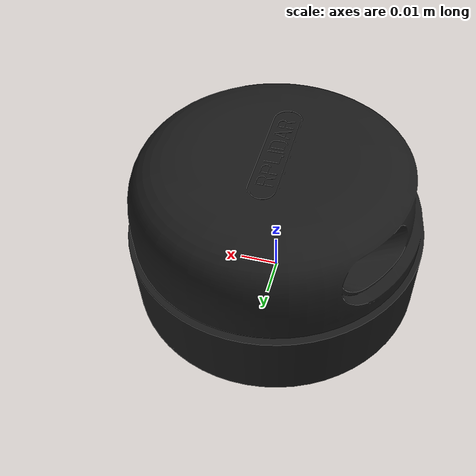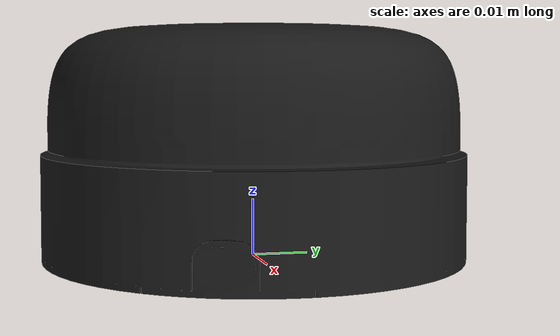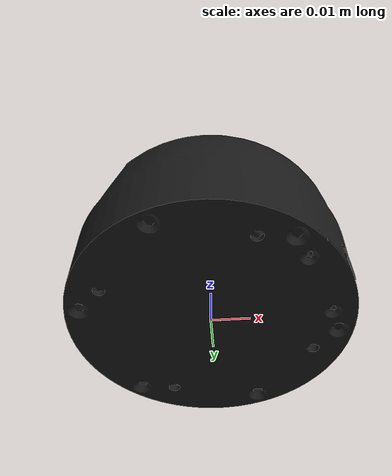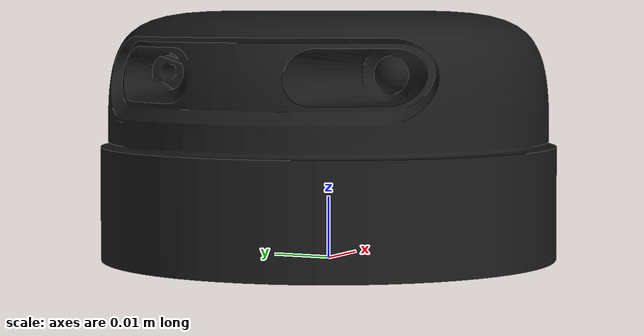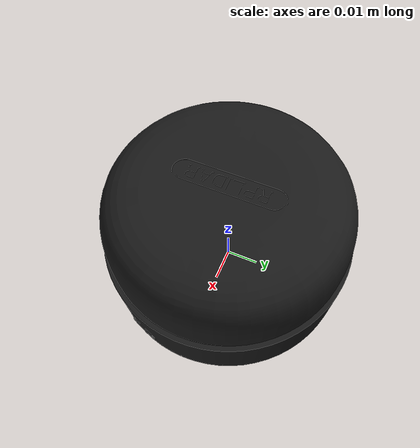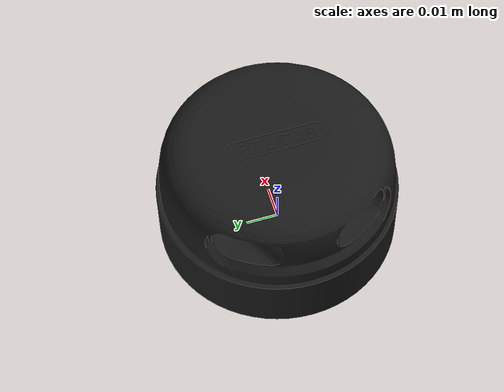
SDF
<?xml version="1.0" ?>
<sdf version="1.6">
  <model name="rplidar_a2">
    <link name="link">
      <pose>0 0 0 0 0 0</pose>
      <inertial>
        <pose>0 0 0 0 0 0</pose>
        <mass>0.2</mass>
        <inertia>
          <ixx>0.00034437749999999994</ixx>
          <ixy>0</ixy>
          <ixz>0</ixz>
          <iyy>0.00034437749999999994</iyy>
          <iyz>0</iyz>
          <izz>0.00022199999999999998</izz>
        </inertia>
      </inertial>

      <visual name="visual">
        <geometry>
          <mesh>
            <uri>model://rplidar_a2/meshes/rplidar_a2.dae</uri>
          </mesh>
        </geometry>
        <material>
          <ambient>0.05 0.05 0.05 1</ambient>
          <diffuse>0.1 0.1 0.1 1</diffuse>
          <specular>0.01 0.01 0.01 1</specular>
          <emissive>0.0 0.0 0.0 1</emissive>
        </material>
      </visual>
      <sensor name="gpu_lidar" type="gpu_lidar">
        <pose>0 0 0.03 0 0 0</pose>
        <ray>
          <scan>
            <horizontal>
              <samples>1080</samples>
              <resolution>1</resolution>
              <min_angle>-3.14159</min_angle>
              <max_angle>3.14159</max_angle>
            </horizontal>
          </scan>
          <range>
            <min>0.1</min>
            <max>12</max>
            <resolution>0.01</resolution>
          </range>
          <noise>
            <type>gaussian</type>
            <mean>0.0</mean>
            <stddev>0.001</stddev>
          </noise>
        </ray>
        <always_on>1</always_on>
        <update_rate>30</update_rate>
        <visualize>true</visualize>
      </sensor>
    </link>
  </model>
</sdf>
